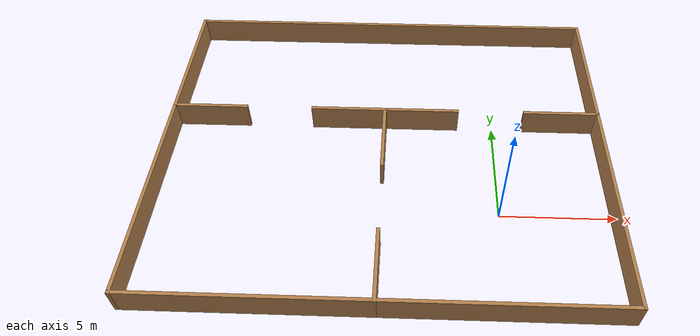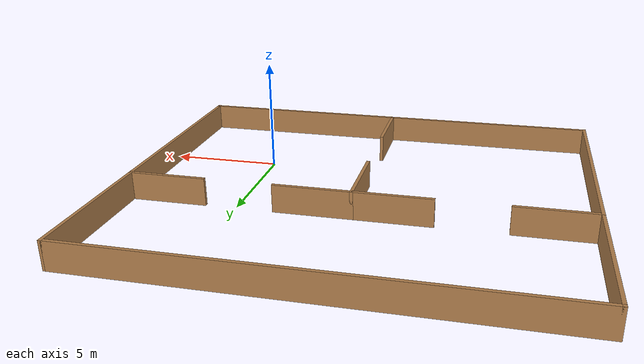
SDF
<?xml version='1.0'?>
<sdf version='1.6'>
  <model name='multi_rooms'>
    <pose frame=''>-5.066 3.299 0 0 -0 0</pose>
    <link name='Wall_11'>
      <collision name='Wall_11_Collision'>
        <geometry>
          <box>
            <size>3.25 0.15 1.25</size>
          </box>
        </geometry>
        <pose frame=''>0 0 0.625 0 -0 0</pose>
      </collision>
      <visual name='Wall_11_Visual'>
        <pose frame=''>0 0 0.625 0 -0 0</pose>
        <geometry>
          <box>
            <size>3.25 0.15 1.25</size>
          </box>
        </geometry>
        <material>
          <script>
            <uri>file://media/materials/scripts/gazebo.material</uri>
            <name>Gazebo/Wood</name>
          </script>
          <ambient>1 1 1 1</ambient>
        </material>
        <meta>
          <layer>0</layer>
        </meta>
      </visual>
      <pose frame=''>0 -6.55 0 0 -0 1.5708</pose>
    </link>
    <link name='Wall_13'>
      <collision name='Wall_13_Collision'>
        <geometry>
          <box>
            <size>10 0.15 1.25</size>
          </box>
        </geometry>
        <pose frame=''>0 0 0.625 0 -0 0</pose>
      </collision>
      <visual name='Wall_13_Visual'>
        <pose frame=''>0 0 0.625 0 -0 0</pose>
        <geometry>
          <box>
            <size>10 0.15 1.25</size>
          </box>
        </geometry>
        <material>
          <script>
            <uri>file://media/materials/scripts/gazebo.material</uri>
            <name>Gazebo/Wood</name>
          </script>
          <ambient>1 1 1 1</ambient>
        </material>
        <meta>
          <layer>0</layer>
        </meta>
      </visual>
      <pose frame=''>-4.925 -8.1 0 0 -0 3.14159</pose>
    </link>
    <link name='Wall_2'>
      <collision name='Wall_2_Collision'>
        <geometry>
          <box>
            <size>10 0.15 1.25</size>
          </box>
        </geometry>
        <pose frame=''>0 0 0.625 0 -0 0</pose>
      </collision>
      <visual name='Wall_2_Visual'>
        <pose frame=''>0 0 0.625 0 -0 0</pose>
        <geometry>
          <box>
            <size>10 0.15 1.25</size>
          </box>
        </geometry>
        <material>
          <script>
            <uri>file://media/materials/scripts/gazebo.material</uri>
            <name>Gazebo/Wood</name>
          </script>
          <ambient>1 1 1 1</ambient>
        </material>
        <meta>
          <layer>0</layer>
        </meta>
      </visual>
      <pose frame=''>4.925 -8.1 0 0 -0 3.14159</pose>
    </link>
    <link name='Wall_20'>
      <collision name='Wall_20_Collision'>
        <geometry>
          <box>
            <size>3.5 0.15 1.25</size>
          </box>
        </geometry>
        <pose frame=''>0 0 0.625 0 -0 0</pose>
      </collision>
      <visual name='Wall_20_Visual'>
        <pose frame=''>0 0 0.625 0 -0 0</pose>
        <geometry>
          <box>
            <size>3.5 0.15 1.25</size>
          </box>
        </geometry>
        <material>
          <script>
            <uri>file://media/materials/scripts/gazebo.material</uri>
            <name>Gazebo/Wood</name>
          </script>
          <ambient>1 1 1 1</ambient>
        </material>
        <meta>
          <layer>0</layer>
        </meta>
      </visual>
      <pose frame=''>-1.675 1.75 0 0 -0 3.14159</pose>
    </link>
    <link name='Wall_22'>
      <collision name='Wall_22_Collision'>
        <geometry>
          <box>
            <size>3.5 0.15 1.25</size>
          </box>
        </geometry>
        <pose frame=''>0 0 0.625 0 -0 0</pose>
      </collision>
      <visual name='Wall_22_Visual'>
        <pose frame=''>0 0 0.625 0 -0 0</pose>
        <geometry>
          <box>
            <size>3.5 0.15 1.25</size>
          </box>
        </geometry>
        <material>
          <script>
            <uri>file://media/materials/scripts/gazebo.material</uri>
            <name>Gazebo/Wood</name>
          </script>
          <ambient>1 1 1 1</ambient>
        </material>
        <meta>
          <layer>0</layer>
        </meta>
      </visual>
      <pose frame=''>1.675 1.75 0 0 -0 0</pose>
    </link>
    <link name='Wall_24'>
      <collision name='Wall_24_Collision'>
        <geometry>
          <box>
            <size>3.5 0.15 1.25</size>
          </box>
        </geometry>
        <pose frame=''>0 0 0.625 0 -0 0</pose>
      </collision>
      <visual name='Wall_24_Visual'>
        <pose frame=''>0 0 0.625 0 -0 0</pose>
        <geometry>
          <box>
            <size>3.5 0.15 1.25</size>
          </box>
        </geometry>
        <material>
          <script>
            <uri>file://media/materials/scripts/gazebo.material</uri>
            <name>Gazebo/Wood</name>
          </script>
          <ambient>1 1 1 1</ambient>
        </material>
        <meta>
          <layer>0</layer>
        </meta>
      </visual>
      <pose frame=''>8.175 1.75 0 0 -0 3.14159</pose>
    </link>
    <link name='Wall_34'>
      <collision name='Wall_34_Collision'>
        <geometry>
          <box>
            <size>10 0.15 1.25</size>
          </box>
        </geometry>
        <pose frame=''>0 0 0.625 0 -0 0</pose>
      </collision>
      <visual name='Wall_34_Visual'>
        <pose frame=''>0 0 0.625 0 -0 0</pose>
        <geometry>
          <box>
            <size>10 0.15 1.25</size>
          </box>
        </geometry>
        <material>
          <script>
            <uri>file://media/materials/scripts/gazebo.material</uri>
            <name>Gazebo/Wood</name>
          </script>
          <ambient>1 1 1 1</ambient>
        </material>
        <meta>
          <layer>0</layer>
        </meta>
      </visual>
      <pose frame=''>-9.85 -3.175 0 0 -0 1.5708</pose>
    </link>
    <link name='Wall_35'>
      <collision name='Wall_35_Collision'>
        <geometry>
          <box>
            <size>3.5 0.15 1.25</size>
          </box>
        </geometry>
        <pose frame=''>0 0 0.625 0 -0 0</pose>
      </collision>
      <visual name='Wall_35_Visual'>
        <pose frame=''>0 0 0.625 0 -0 0</pose>
        <geometry>
          <box>
            <size>3.5 0.15 1.25</size>
          </box>
        </geometry>
        <material>
          <script>
            <uri>file://media/materials/scripts/gazebo.material</uri>
            <name>Gazebo/Wood</name>
          </script>
          <ambient>1 1 1 1</ambient>
        </material>
        <meta>
          <layer>0</layer>
        </meta>
      </visual>
      <pose frame=''>-8.175 1.75 0 0 -0 0</pose>
    </link>
    <link name='Wall_40'>
      <collision name='Wall_40_Collision'>
        <geometry>
          <box>
            <size>6.5 0.15 1.25</size>
          </box>
        </geometry>
        <pose frame=''>0 0 0.625 0 -0 0</pose>
      </collision>
      <visual name='Wall_40_Visual'>
        <pose frame=''>0 0 0.625 0 -0 0</pose>
        <geometry>
          <box>
            <size>6.5 0.15 1.25</size>
          </box>
        </geometry>
        <material>
          <script>
            <uri>file://media/materials/scripts/gazebo.material</uri>
            <name>Gazebo/Wood</name>
          </script>
          <ambient>1 1 1 1</ambient>
        </material>
        <meta>
          <layer>0</layer>
        </meta>
      </visual>
      <pose frame=''>-9.85 4.925 0 0 -0 1.5708</pose>
    </link>
    <link name='Wall_41'>
      <collision name='Wall_41_Collision'>
        <geometry>
          <box>
            <size>19.75 0.15 1.25</size>
          </box>
        </geometry>
        <pose frame=''>0 0 0.625 0 -0 0</pose>
      </collision>
      <visual name='Wall_41_Visual'>
        <pose frame=''>0 0 0.625 0 -0 0</pose>
        <geometry>
          <box>
            <size>19.75 0.15 1.25</size>
          </box>
        </geometry>
        <material>
          <script>
            <uri>file://media/materials/scripts/gazebo.material</uri>
            <name>Gazebo/Wood</name>
          </script>
          <ambient>1 1 1 1</ambient>
        </material>
        <meta>
          <layer>0</layer>
        </meta>
      </visual>
      <pose frame=''>-0.05 8.1 0 0 -0 0</pose>
    </link>
    <link name='Wall_43'>
      <collision name='Wall_43_Collision'>
        <geometry>
          <box>
            <size>6.5 0.15 1.25</size>
          </box>
        </geometry>
        <pose frame=''>0 0 0.625 0 -0 0</pose>
      </collision>
      <visual name='Wall_43_Visual'>
        <pose frame=''>0 0 0.625 0 -0 0</pose>
        <geometry>
          <box>
            <size>6.5 0.15 1.25</size>
          </box>
        </geometry>
        <material>
          <script>
            <uri>file://media/materials/scripts/gazebo.material</uri>
            <name>Gazebo/Wood</name>
          </script>
          <ambient>1 1 1 1</ambient>
        </material>
        <meta>
          <layer>0</layer>
        </meta>
      </visual>
      <pose frame=''>9.85 4.925 0 0 -0 1.5708</pose>
    </link>
    <link name='Wall_5'>
      <collision name='Wall_5_Collision'>
        <geometry>
          <box>
            <size>10 0.15 1.25</size>
          </box>
        </geometry>
        <pose frame=''>0 0 0.625 0 -0 0</pose>
      </collision>
      <visual name='Wall_5_Visual'>
        <pose frame=''>0 0 0.625 0 -0 0</pose>
        <geometry>
          <box>
            <size>10 0.15 1.25</size>
          </box>
        </geometry>
        <material>
          <script>
            <uri>file://media/materials/scripts/gazebo.material</uri>
            <name>Gazebo/Wood</name>
          </script>
          <ambient>1 1 1 1</ambient>
        </material>
        <meta>
          <layer>0</layer>
        </meta>
      </visual>
      <pose frame=''>9.85 -3.175 0 0 -0 1.5708</pose>
    </link>
    <link name='Wall_9'>
      <collision name='Wall_9_Collision'>
        <geometry>
          <box>
            <size>3.5 0.15 1.25</size>
          </box>
        </geometry>
        <pose frame=''>0 0 0.625 0 -0 0</pose>
      </collision>
      <visual name='Wall_9_Visual'>
        <pose frame=''>0 0 0.625 0 -0 0</pose>
        <geometry>
          <box>
            <size>3.5 0.15 1.25</size>
          </box>
        </geometry>
        <material>
          <script>
            <uri>file://media/materials/scripts/gazebo.material</uri>
            <name>Gazebo/Wood</name>
          </script>
          <ambient>1 1 1 1</ambient>
        </material>
        <meta>
          <layer>0</layer>
        </meta>
      </visual>
      <pose frame=''>0 0.075 0 0 -0 -1.5708</pose>
    </link>
    <static>1</static>
  </model>
</sdf>
